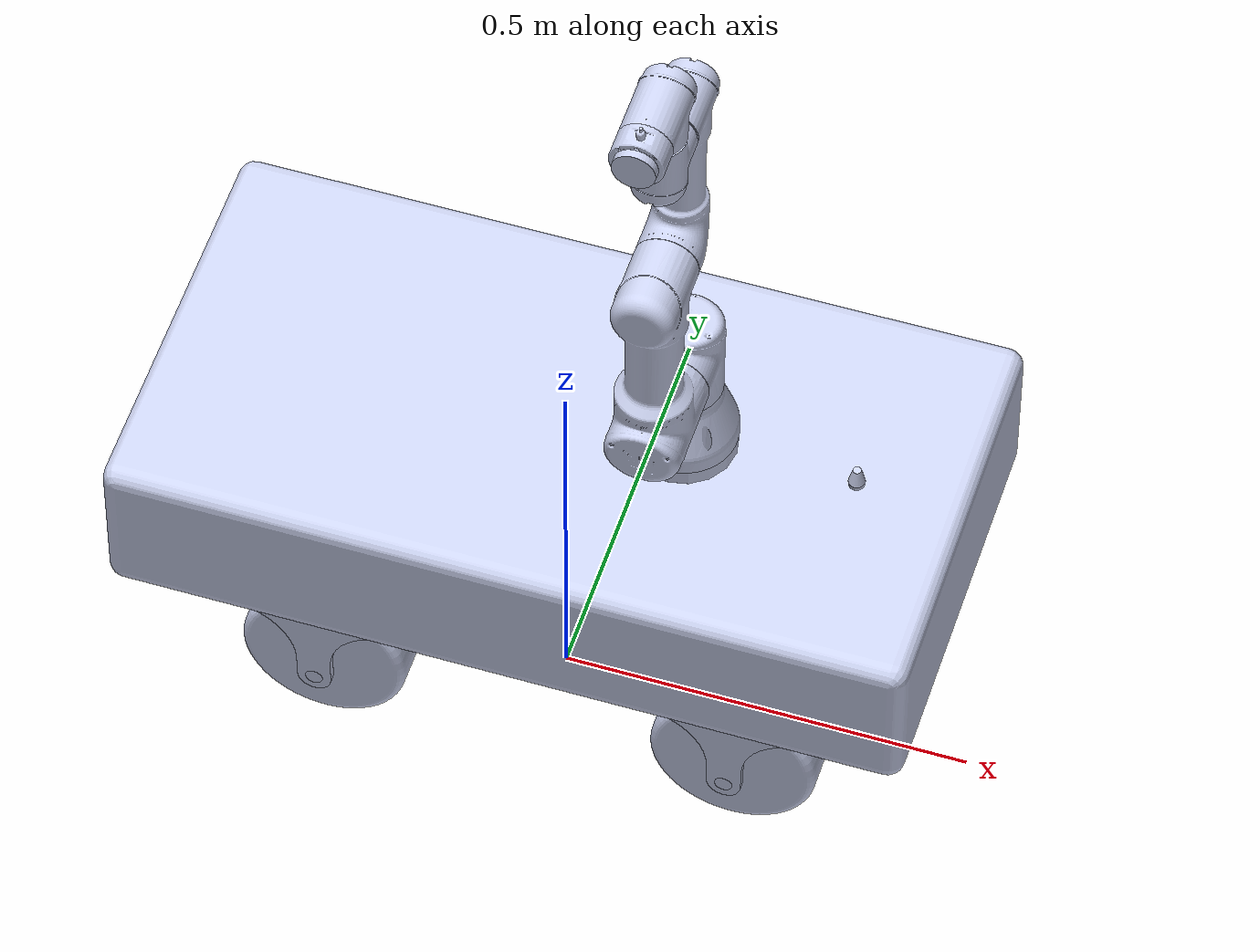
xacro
<?xml version="1.0" ?>
<robot
  name="mobile_manipulator" xmlns:xacro="http://ros.org/wiki/xacro">
  # Add this before base link
  <link name="dummy_link"></link>
  <link
    name="base_link">
    <inertial>
      <origin
        xyz="0.000644165065527376 -3.35619100197445E-18 0.38743266690136"
        rpy="0 0 0" />
      <mass
        value="96.9136296338022" />
      <inertia
        ixx="2.38886837855272"
        ixy="-1.23188622578839E-16"
        ixz="-0.00214186650953037"
        iyy="7.80200314580561"
        iyz="-1.32310636050657E-17"
        izz="9.55027150851434" />
    </inertial>
    <visual>
      <origin
        xyz="0 0 0"
        rpy="0 0 0" />
      <geometry>
        <mesh
          filename="package://mobile_manipulator/meshes/base_link.STL" />
      </geometry>
      <material
        name="">
        <color
          rgba="0.792156862745098 0.819607843137255 0.933333333333333 1" />
      </material>
    </visual>
    <collision>
      <origin
        xyz="0 0 0"
        rpy="0 0 0" />
      <geometry>
        <mesh
          filename="package://mobile_manipulator/meshes/base_link.STL" />
      </geometry>
    </collision>
  </link>
  # Add this after base link
  <joint name="dummy_joint" type="fixed">
      <origin rpy="0 0 0" xyz="0 0 0" />
      <parent link="dummy_link"/>
      <child link="base_link"/>
  </joint>
  <link
    name="front_left_steering">
    <inertial>
      <origin
        xyz="-5.55111512312578E-17 2.77555756156289E-17 -0.00100979154458806"
        rpy="0 0 0" />
      <mass
        value="12.0764682220137" />
      <inertia
        ixx="0.00246925151599424"
        ixy="1.12973189801329E-19"
        ixz="4.11518887968338E-19"
        iyy="0.00412813483107971"
        iyz="-4.31357938885303E-19"
        izz="0.00351559812829262" />
    </inertial>
    <visual>
      <origin
        xyz="0 0 0"
        rpy="0 0 0" />
      <geometry>
        <mesh
          filename="package://mobile_manipulator/meshes/front_left_steering.STL" />
      </geometry>
      <material
        name="">
        <color
          rgba="0.792156862745098 0.819607843137255 0.933333333333333 1" />
      </material>
    </visual>
    <collision>
      <origin
        xyz="0 0 0"
        rpy="0 0 0" />
      <geometry>
        <mesh
          filename="package://mobile_manipulator/meshes/front_left_steering.STL" />
      </geometry>
    </collision>
  </link>
  <joint
    name="front_left_steering_joint"
    type="revolute">
    <origin
      xyz="0.254 0.12 0.2365"
      rpy="0 0 3.1416" />
    <parent
      link="base_link" />
    <child
      link="front_left_steering" />
    <axis
      xyz="0 0 1" />
    <limit
      lower="-6.28"
      upper="6.28"
      effort="100"
      velocity="100" />
  </joint>
  <link
    name="front_left_wheel">
    <inertial>
      <origin
        xyz="-5.55111512312578E-17 -2.77555756156289E-17 -0.068"
        rpy="0 0 0" />
      <mass
        value="24.558140982851" />
      <inertia
        ixx="0.00741941487915618"
        ixy="-1.21590829930798E-36"
        ixz="3.75517939949407E-21"
        iyy="0.00741941487915618"
        iyz="-1.61219743567717E-35"
        izz="0.012407928301343" />
    </inertial>
    <visual>
      <origin
        xyz="0 0 0"
        rpy="0 0 0" />
      <geometry>
        <mesh
          filename="package://mobile_manipulator/meshes/front_left_wheel.STL" />
      </geometry>
      <material
        name="">
        <color
          rgba="0.792156862745098 0.819607843137255 0.933333333333333 1" />
      </material>
    </visual>
    <collision>
      <origin
        xyz="0 0 0"
        rpy="0 0 0" />
      <geometry>
        <mesh
          filename="package://mobile_manipulator/meshes/front_left_wheel.STL" />
      </geometry>
    </collision>
  </link>
  <joint
    name="front_left_wheel_joint"
    type="continuous">
    <origin
      xyz="0 -0.068 -0.135"
      rpy="1.5708 0 0" />
    <parent
      link="front_left_steering" />
    <child
      link="front_left_wheel" />
    <axis
      xyz="0 0 1" />
  </joint>
  <link
    name="front_right_steering">
    <inertial>
      <origin
        xyz="0 0 -0.0010098"
        rpy="0 0 0" />
      <mass
        value="12.076" />
      <inertia
        ixx="0.0024693"
        ixy="3.1083E-19"
        ixz="2.4445E-19"
        iyy="0.0041281"
        iyz="-4.0001E-19"
        izz="0.0035156" />
    </inertial>
    <visual>
      <origin
        xyz="0 0 0"
        rpy="0 0 0" />
      <geometry>
        <mesh
          filename="package://mobile_manipulator/meshes/front_right_steering.STL" />
      </geometry>
      <material
        name="">
        <color
          rgba="0.79216 0.81961 0.93333 1" />
      </material>
    </visual>
    <collision>
      <origin
        xyz="0 0 0"
        rpy="0 0 0" />
      <geometry>
        <mesh
          filename="package://mobile_manipulator/meshes/front_right_steering.STL" />
      </geometry>
    </collision>
  </link>
  <joint
    name="front_right_steering_joint"
    type="revolute">
    <origin
      xyz="0.254 -0.12 0.2365"
      rpy="0 0 3.1416" />
    <parent
      link="base_link" />
    <child
      link="front_right_steering" />
    <axis
      xyz="0 0 1" />
    <limit
      lower="-6.28"
      upper="6.28"
      effort="0"
      velocity="0" />
  </joint>
  <link
    name="front_right_wheel">
    <inertial>
      <origin
        xyz="-5.55111512312578E-17 -2.77555756156289E-17 0.068"
        rpy="0 0 0" />
      <mass
        value="24.558140982851" />
      <inertia
        ixx="0.00741941487915618"
        ixy="-1.21590829930796E-36"
        ixz="-1.09998260108621E-19"
        iyy="0.00741941487915618"
        iyz="-1.61219743567717E-35"
        izz="0.012407928301343" />
    </inertial>
    <visual>
      <origin
        xyz="0 0 0"
        rpy="0 0 0" />
      <geometry>
        <mesh
          filename="package://mobile_manipulator/meshes/front_right_wheel.STL" />
      </geometry>
      <material
        name="">
        <color
          rgba="0.792156862745098 0.819607843137255 0.933333333333333 1" />
      </material>
    </visual>
    <collision>
      <origin
        xyz="0 0 0"
        rpy="0 0 0" />
      <geometry>
        <mesh
          filename="package://mobile_manipulator/meshes/front_right_wheel.STL" />
      </geometry>
    </collision>
  </link>
  <joint
    name="front_right_wheel_joint"
    type="continuous">
    <origin
      xyz="0 0.068 -0.135"
      rpy="1.5708 0 0" />
    <parent
      link="front_right_steering" />
    <child
      link="front_right_wheel" />
    <axis
      xyz="0 0 1" />
  </joint>
  <link
    name="back_left_steering">
    <inertial>
      <origin
        xyz="-0.254 0.12 0.239368028274236"
        rpy="0 0 0" />
      <mass
        value="13.0620935752366" />
      <inertia
        ixx="0.00275590353584088"
        ixy="7.90858358456072E-20"
        ixz="-3.20596364961941E-19"
        iyy="0.00441705252066951"
        iyz="4.79649320911441E-19"
        izz="0.00364730238636921" />
    </inertial>
    <visual>
      <origin
        xyz="0 0 0"
        rpy="0 0 0" />
      <geometry>
        <mesh
          filename="package://mobile_manipulator/meshes/back_left_steering.STL" />
      </geometry>
      <material
        name="">
        <color
          rgba="0.792156862745098 0.819607843137255 0.933333333333333 1" />
      </material>
    </visual>
    <collision>
      <origin
        xyz="0 0 0"
        rpy="0 0 0" />
      <geometry>
        <mesh
          filename="package://mobile_manipulator/meshes/back_left_steering.STL" />
      </geometry>
    </collision>
  </link>
  <joint
    name="back_left_steering_joint"
    type="fixed">
    <origin
      xyz="0 0 0"
      rpy="0 0 0" />
    <parent
      link="base_link" />
    <child
      link="back_left_steering" />
    <axis
      xyz="0 0 0" />
  </joint>
  <link
    name="back_left_wheel">
    <inertial>
      <origin
        xyz="5.5511E-17 -2.7756E-17 -0.068"
        rpy="0 0 0" />
      <mass
        value="24.558" />
      <inertia
        ixx="0.0074194"
        ixy="-1.2159E-36"
        ixz="-3.7552E-21"
        iyy="0.0074194"
        iyz="-1.6122E-35"
        izz="0.012408" />
    </inertial>
    <visual>
      <origin
        xyz="0 0 0"
        rpy="0 0 0" />
      <geometry>
        <mesh
          filename="package://mobile_manipulator/meshes/back_left_wheel.STL" />
      </geometry>
      <material
        name="">
        <color
          rgba="0.79216 0.81961 0.93333 1" />
      </material>
    </visual>
    <collision>
      <origin
        xyz="0 0 0"
        rpy="0 0 0" />
      <geometry>
        <mesh
          filename="package://mobile_manipulator/meshes/back_left_wheel.STL" />
      </geometry>
    </collision>
  </link>
  <joint
    name="back_left_wheel_joint"
    type="continuous">
    <origin
      xyz="-0.254 0.188 0.1015"
      rpy="1.5708 0 3.1416" />
    <parent
      link="back_left_steering" />
    <child
      link="back_left_wheel" />
    <axis
      xyz="0 0 1" />
  </joint>
  <link
    name="back_right_steering">
    <inertial>
      <origin
        xyz="-0.254 -0.12 0.23937"
        rpy="0 0 0" />
      <mass
        value="13.062" />
      <inertia
        ixx="0.0027559"
        ixy="2.6328E-19"
        ixz="-2.6158E-19"
        iyy="0.0044171"
        iyz="4.5407E-19"
        izz="0.0036473" />
    </inertial>
    <visual>
      <origin
        xyz="0 0 0"
        rpy="0 0 0" />
      <geometry>
        <mesh
          filename="package://mobile_manipulator/meshes/back_right_steering.STL" />
      </geometry>
      <material
        name="">
        <color
          rgba="0.79216 0.81961 0.93333 1" />
      </material>
    </visual>
    <collision>
      <origin
        xyz="0 0 0"
        rpy="0 0 0" />
      <geometry>
        <mesh
          filename="package://mobile_manipulator/meshes/back_right_steering.STL" />
      </geometry>
    </collision>
  </link>
  <joint
    name="back_right_steering_joint"
    type="fixed">
    <origin
      xyz="0 0 0"
      rpy="0 0 0" />
    <parent
      link="base_link" />
    <child
      link="back_right_steering" />
    <axis
      xyz="0 0 0" />
  </joint>
  <link
    name="back_right_wheel">
    <inertial>
      <origin
        xyz="5.55111512312578E-17 -2.77555756156289E-17 0.068"
        rpy="0 0 0" />
      <mass
        value="24.558140982851" />
      <inertia
        ixx="0.00741941487915618"
        ixy="-1.21590829930796E-36"
        ixz="-1.41567439917769E-19"
        iyy="0.00741941487915618"
        iyz="-1.61219743567717E-35"
        izz="0.012407928301343" />
    </inertial>
    <visual>
      <origin
        xyz="0 0 0"
        rpy="0 0 0" />
      <geometry>
        <mesh
          filename="package://mobile_manipulator/meshes/back_right_wheel.STL" />
      </geometry>
      <material
        name="">
        <color
          rgba="0.792156862745098 0.819607843137255 0.933333333333333 1" />
      </material>
    </visual>
    <collision>
      <origin
        xyz="0 0 0"
        rpy="0 0 0" />
      <geometry>
        <mesh
          filename="package://mobile_manipulator/meshes/back_right_wheel.STL" />
      </geometry>
    </collision>
  </link>
  <joint
    name="back_right_wheel_joint"
    type="continuous">
    <origin
      xyz="-0.254 -0.188 0.1015"
      rpy="1.5708 0 3.1416" />
    <parent
      link="back_right_steering" />
    <child
      link="back_right_wheel" />
    <axis
      xyz="0 0 1" />
  </joint>
  <link
    name="laser">
    <inertial>
      <origin
        xyz="5.55111512312578E-17 9.49145585482929E-19 0.00785714285714281"
        rpy="0 0 0" />
      <mass
        value="0.00366519142918809" />
      <inertia
        ixx="1.69702103162663E-07"
        ixy="8.8232598672323E-24"
        ixz="6.55442161565827E-24"
        iyy="1.69702103162663E-07"
        iyz="3.31776222837145E-24"
        izz="1.21736715326605E-07" />
    </inertial>
    <visual>
      <origin
        xyz="0 0 0"
        rpy="0 0 0" />
      <geometry>
        <mesh
          filename="package://mobile_manipulator/meshes/laser.STL" />
      </geometry>
      <material
        name="">
        <color
          rgba="0.792156862745098 0.819607843137255 0.933333333333333 1" />
      </material>
    </visual>
    <collision>
      <origin
        xyz="0 0 0"
        rpy="0 0 0" />
      <geometry>
        <mesh
          filename="package://mobile_manipulator/meshes/laser.STL" />
      </geometry>
    </collision>
  </link>
  <joint
    name="laser_joint"
    type="fixed">
    <origin
      xyz="0.35 0 0.4915"
      rpy="0 0 3.1416" />
    <parent
      link="base_link" />
    <child
      link="laser" />
    <axis
      xyz="0 0 0" />
  </joint>
  <link
    name="manipulator_base">
    <inertial>
      <origin
        xyz="0.14246 0.00080895 0.55272"
        rpy="0 0 0" />
      <mass
        value="40" />
      <inertia
        ixx="0.00076128"
        ixy="3.0811E-07"
        ixz="-3.5087E-07"
        iyy="0.00077456"
        iyz="3.469E-06"
        izz="0.0010029" />
    </inertial>
    <visual>
      <origin
        xyz="0 0 0"
        rpy="0 0 0" />
      <geometry>
        <mesh
          filename="package://mobile_manipulator/meshes/manipulator_base.STL" />
      </geometry>
      <material
        name="">
        <color
          rgba="0.79216 0.81961 0.93333 1" />
      </material>
    </visual>
    <collision>
      <origin
        xyz="0 0 0"
        rpy="0 0 0" />
      <geometry>
        <mesh
          filename="package://mobile_manipulator/meshes/manipulator_base.STL" />
      </geometry>
    </collision>
  </link>
  <joint
    name="manipulator_base_joint"
    type="fixed">
    <origin
      xyz="0 0 0"
      rpy="0 0 0" />
    <parent
      link="base_link" />
    <child
      link="manipulator_base" />
    <axis
      xyz="0 0 0" />
  </joint>
  <link
    name="link_1">
    <inertial>
      <origin
        xyz="6.58173419118557E-06 0.00733747366447093 0.0542895851803173"
        rpy="0 0 0" />
      <mass
        value="0.812" />
      <inertia
        ixx="0.00106904405251134"
        ixy="-1.02159712854061E-07"
        ixz="9.60164144640981E-08"
        iyy="0.000990265851946983"
        iyz="-0.000131073827945145"
        izz="0.000906590285760524" />
    </inertial>
    <visual>
      <origin
        xyz="0 0 0"
        rpy="0 0 0" />
      <geometry>
        <mesh
          filename="package://mobile_manipulator/meshes/link_1.STL" />
      </geometry>
      <material
        name="">
        <color
          rgba="0.792156862745098 0.819607843137255 0.933333333333333 1" />
      </material>
    </visual>
    <collision>
      <origin
        xyz="0 0 0"
        rpy="0 0 0" />
      <geometry>
        <mesh
          filename="package://mobile_manipulator/meshes/link_1.STL" />
      </geometry>
    </collision>
  </link>
  <joint
    name="link_1_joint"
    type="revolute">
    <origin
      xyz="0.1425 0 0.59255"
      rpy="0 0 3.1416" />
    <parent
      link="manipulator_base" />
    <child
      link="link_1" />
    <axis
      xyz="0 0 -1" />
    <limit
      lower="-20.00"
      upper="20.00"
      effort="100"
      velocity="100" />
  </joint>
  <link
    name="link_2">
    <inertial>
      <origin
        xyz="-1.67408324636131E-06 -0.10564737774179 0.0625965013739546"
        rpy="0 0 0" />
      <mass
        value="0.028" />
      <inertia
        ixx="0.0026497946697873"
        ixy="-1.02109120182075E-07"
        ixz="-9.41450174738138E-08"
        iyy="0.00167012581720785"
        iyz="8.11148821187473E-05"
        izz="0.00251747271096735" />
    </inertial>
    <visual>
      <origin
        xyz="0 0 0"
        rpy="0 0 0" />
      <geometry>
        <mesh
          filename="package://mobile_manipulator/meshes/link_2.STL" />
      </geometry>
      <material
        name="">
        <color
          rgba="0.792156862745098 0.819607843137255 0.933333333333333 1" />
      </material>
    </visual>
    <collision>
      <origin
        xyz="0 0 0"
        rpy="0 0 0" />
      <geometry>
        <mesh
          filename="package://mobile_manipulator/meshes/link_2.STL" />
      </geometry>
    </collision>
  </link>
  <joint
    name="link_2_joint"
    type="revolute">
    <origin
      xyz="0 0.054 0.065867"
      rpy="-1.5708 0 0" />
    <parent
      link="link_1" />
    <child
      link="link_2" />
    <axis
      xyz="0 0 -1" />
    <limit
      lower="-20.00"
      upper="20.00"
      effort="100"
      velocity="100" />
  </joint>
  <link
    name="link_3">
    <inertial>
      <origin
        xyz="0.11118050454157 1.42533757430119E-06 -0.0458120680197103"
        rpy="0 0 0" />
      <mass
        value="0.012" />
      <inertia
        ixx="0.000542711704316877"
        ixy="1.25825132181669E-08"
        ixz="4.61333716863673E-05"
        iyy="0.00107276322079369"
        iyz="2.00180185555328E-09"
        izz="0.00101487896246635" />
    </inertial>
    <visual>
      <origin
        xyz="0 0 0"
        rpy="0 0 0" />
      <geometry>
        <mesh
          filename="package://mobile_manipulator/meshes/link_3.STL" />
      </geometry>
      <material
        name="">
        <color
          rgba="0.792156862745098 0.819607843137255 0.933333333333333 1" />
      </material>
    </visual>
    <collision>
      <origin
        xyz="0 0 0"
        rpy="0 0 0" />
      <geometry>
        <mesh
          filename="package://mobile_manipulator/meshes/link_3.STL" />
      </geometry>
    </collision>
  </link>
  <joint
    name="link_3_joint"
    type="revolute">
    <origin
      xyz="0 -0.24361 0.0236"
      rpy="0 0 -1.5708" />
    <parent
      link="link_2" />
    <child
      link="link_3" />
    <axis
      xyz="0 0 1" />
    <limit
      lower="-20.00"
      upper="20.00"
      effort="100"
      velocity="100" />
  </joint>
  <link
    name="link_4">
    <inertial>
      <origin
        xyz="-0.000517520676647787 -1.55610876323431E-07 0.038579075531619"
        rpy="0 0 0" />
      <mass
        value="0.00306" />
      <inertia
        ixx="0.000199090773054517"
        ixy="-5.53800052139047E-10"
        ixz="-1.83392823207415E-05"
        iyy="0.000226213544707352"
        iyz="-1.13240497380847E-10"
        izz="0.000194591880506209" />
    </inertial>
    <visual>
      <origin
        xyz="0 0 0"
        rpy="0 0 0" />
      <geometry>
        <mesh
          filename="package://mobile_manipulator/meshes/link_4.STL" />
      </geometry>
      <material
        name="">
        <color
          rgba="0.792156862745098 0.819607843137255 0.933333333333333 1" />
      </material>
    </visual>
    <collision>
      <origin
        xyz="0 0 0"
        rpy="0 0 0" />
      <geometry>
        <mesh
          filename="package://mobile_manipulator/meshes/link_4.STL" />
      </geometry>
    </collision>
  </link>
  <joint
    name="link_4_joint"
    type="revolute">
    <origin
      xyz="0.213 0 -0.008361"
      rpy="0 0 0" />
    <parent
      link="link_3" />
    <child
      link="link_4" />
    <axis
      xyz="0 0 -1" />
    <limit
      lower="-20.00"
      upper="20.00"
      effort="100"
      velocity="100" />
  </joint>
  <link
    name="link_5">
    <inertial>
      <origin
        xyz="-1.54480118669253E-07 8.92294302720226E-05 0.0386330063774174"
        rpy="0 0 0" />
      <mass
        value="0.00306" />
      <inertia
        ixx="0.000227612518030099"
        ixy="5.57169423133457E-10"
        ixz="-1.13170160674141E-10"
        iyy="0.000201866565828176"
        iyz="1.83392711961254E-05"
        izz="0.000195999074242431" />
    </inertial>
    <visual>
      <origin
        xyz="0 0 0"
        rpy="0 0 0" />
      <geometry>
        <mesh
          filename="package://mobile_manipulator/meshes/link_5.STL" />
      </geometry>
      <material
        name="">
        <color
          rgba="0.792156862745098 0.819607843137255 0.933333333333333 1" />
      </material>
    </visual>
    <collision>
      <origin
        xyz="0 0 0"
        rpy="0 0 0" />
      <geometry>
        <mesh
          filename="package://mobile_manipulator/meshes/link_5.STL" />
      </geometry>
    </collision>
  </link>
  <joint
    name="link_5_joint"
    type="revolute">
    <origin
      xyz="0.0426 0 0.0445"
      rpy="-1.5708 0 -1.5708" />
    <parent
      link="link_4" />
    <child
      link="link_5" />
    <axis
      xyz="0 0 -1" />
    <limit
      lower="-20.00"
      upper="20.00"
      effort="100"
      velocity="100" />
  </joint>
  <link
    name="link_6">
    <inertial>
      <origin
        xyz="-5.77714265315166E-11 -0.000106055688464446 0.0189845667009977"
        rpy="0 0 0" />
      <mass
        value="0.00137" />
      <inertia
        ixx="4.10643963272602E-05"
        ixy="3.77185656342141E-13"
        ixz="-6.45138236058631E-13"
        iyy="4.127980332862E-05"
        iyz="1.03226516511968E-07"
        izz="5.62853958723768E-05" />
    </inertial>
    <visual>
      <origin
        xyz="0 0 0"
        rpy="0 0 0" />
      <geometry>
        <mesh
          filename="package://mobile_manipulator/meshes/link_6.STL" />
      </geometry>
      <material
        name="">
        <color
          rgba="0.792156862745098 0.819607843137255 0.933333333333333 1" />
      </material>
    </visual>
    <collision>
      <origin
        xyz="0 0 0"
        rpy="0 0 0" />
      <geometry>
        <mesh
          filename="package://mobile_manipulator/meshes/link_6.STL" />
      </geometry>
    </collision>
  </link>
  <joint
    name="link_6_joint"
    type="revolute">
    <origin
      xyz="0 -0.0426 0.0445"
      rpy="1.5708 0 0" />
    <parent
      link="link_5" />
    <child
      link="link_6" />
    <axis
      xyz="0 0 -1" />
    <limit
      lower="-20.00"
      upper="20.00"
      effort="100"
      velocity="100" />
  </joint>
  <link
    name="camera">
    <inertial>
      <origin
        xyz="-1.41553435639707E-15 1.11022302462516E-15 0.00247670059704752"
        rpy="0 0 0" />
      <mass
        value="6.28318530717959E-05" />
      <inertia
        ixx="1.93731546971371E-10"
        ixy="5.4451383681285E-57"
        ixz="-6.07102760021521E-43"
        iyy="1.93731546971371E-10"
        iyz="-4.30823235704669E-27"
        izz="1.25663706143592E-10" />
    </inertial>
    <visual>
      <origin
        xyz="0 0 0"
        rpy="0 0 0" />
      <geometry>
        <mesh
          filename="package://mobile_manipulator/meshes/camera.STL" />
      </geometry>
      <material
        name="">
        <color
          rgba="0.792156862745098 0.819607843137255 0.933333333333333 1" />
      </material>
    </visual>
    <collision>
      <origin
        xyz="0 0 0"
        rpy="0 0 0" />
      <geometry>
        <mesh
          filename="package://mobile_manipulator/meshes/camera.STL" />
      </geometry>
    </collision>
  </link>
  <joint
    name="camera_joint"
    type="fixed">
    <origin
      xyz="0 0.038053 0.023"
      rpy="1.5708 0 3.1416" />
    <parent
      link="link_6" />
    <child
      link="camera" />
    <axis
      xyz="0 0 0" />
  </joint>
  <link
    name="vaccum_gripper">
    <inertial>
      <origin
        xyz="0 1.11022302462516E-16 0.00499999999999995"
        rpy="0 0 0" />
      <mass
        value="0.000196349540849362" />
      <inertia
        ixx="3.23158619314575E-06"
        ixy="-1.28020580982076E-36"
        ixz="-3.52930394689315E-23"
        iyy="3.23158619314575E-06"
        iyz="2.86090848225374E-21"
        izz="6.13592315154257E-06" />
    </inertial>
    <visual>
      <origin
        xyz="0 0 0"
        rpy="0 0 0" />
      <geometry>
        <mesh
          filename="package://mobile_manipulator/meshes/vaccum_gripper.STL" />
      </geometry>
      <material
        name="">
        <color
          rgba="0.792156862745098 0.819607843137255 0.933333333333333 1" />
      </material>
    </visual>
    <collision>
      <origin
        xyz="0 0 0"
        rpy="0 0 0" />
      <geometry>
        <mesh
          filename="package://mobile_manipulator/meshes/vaccum_gripper.STL" />
      </geometry>
    </collision>
  </link>
  <joint
    name="vaccum_gripper_joint"
    type="fixed">
    <origin
      xyz="0 0 0.039"
      rpy="0 0 0" />
    <parent
      link="link_6" />
    <child
      link="vaccum_gripper" />
    <axis
      xyz="0 0 0" />
  </joint>
  <ros2_control name="GazeboSystem" type="system">
  <hardware>
      <plugin>gazebo_ros2_control/GazeboSystem</plugin>
  </hardware>
  # Velocity Controllers

  <joint name="back_left_wheel_joint">
      <command_interface name="velocity">
          <param name="min">-1000.0</param>
          <param name="max">1000.0</param>
      </command_interface>
      <state_interface name="position"/>
      <state_interface name="velocity"/>
  </joint>

  <joint name="back_right_wheel_joint">
      <command_interface name="velocity">
          <param name="min">-1000.0</param>
          <param name="max">1000.0</param>
      </command_interface>
      <state_interface name="position"/>
      <state_interface name="velocity"/>
  </joint>

  <joint name="front_left_wheel_joint">
      <command_interface name="velocity">
          <param name="min">-1000.0</param>
          <param name="max">1000.0</param>
      </command_interface>
      <state_interface name="position"/>
      <state_interface name="velocity"/>
  </joint>

  <joint name="front_right_wheel_joint">
      <command_interface name="velocity">
          <param name="min">-1000.0</param>
          <param name="max">1000.0</param>
      </command_interface>
      <state_interface name="position"/>
      <state_interface name="velocity"/>
  </joint>

  <joint name="link_1_joint">
      <command_interface name="velocity">
          <param name="min">-1000.0</param>
          <param name="max">1000.0</param>
      </command_interface>
      <state_interface name="position"/>
      <state_interface name="velocity"/>
  </joint>

  <joint name="link_2_joint">
      <command_interface name="velocity">
          <param name="min">-1000.0</param>
          <param name="max">1000.0</param>
      </command_interface>
      <state_interface name="position"/>
      <state_interface name="velocity"/>
  </joint>

  <joint name="link_3_joint">
      <command_interface name="velocity">
          <param name="min">-1000.0</param>
          <param name="max">1000.0</param>
      </command_interface>
      <state_interface name="position"/>
      <state_interface name="velocity"/>
  </joint>

  <joint name="link_4_joint">
      <command_interface name="velocity">
          <param name="min">-1000.0</param>
          <param name="max">1000.0</param>
      </command_interface>
      <state_interface name="position"/>
      <state_interface name="velocity"/>
  </joint>

  <joint name="link_5_joint">
      <command_interface name="velocity">
          <param name="min">-1000.0</param>
          <param name="max">1000.0</param>
      </command_interface>
      <state_interface name="position"/>
      <state_interface name="velocity"/>
  </joint>

  <joint name="link_6_joint">
      <command_interface name="velocity">
          <param name="min">-1000.0</param>
          <param name="max">1000.0</param>
      </command_interface>
      <state_interface name="position"/>
      <state_interface name="velocity"/>
  </joint>

  # Position Controller
  <joint name="front_left_steering_joint">
      <command_interface name="position">
          <param name="min">-20.00</param>
          <param name="max">20.00</param>
      </command_interface>
      <state_interface name="position"/>
      <state_interface name="velocity"/>
  </joint>

  <joint name="front_right_steering_joint">
      <command_interface name="position">
          <param name="min">-20.00</param>
          <param name="max">20.00</param>
      </command_interface>
      <state_interface name="position"/>
      <state_interface name="velocity"/>
  </joint>

  <joint name="link_1_joint">
      <command_interface name="position">
          <param name="min">-20.00</param>
          <param name="max">20.00</param>
      </command_interface>
      <state_interface name="position"/>
      <state_interface name="velocity"/>
  </joint>

  <joint name="link_2_joint">
      <command_interface name="position">
          <param name="min">-20.00</param>
          <param name="max">20.00</param>
      </command_interface>
      <state_interface name="position"/>
      <state_interface name="velocity"/>
  </joint>

  <joint name="link_3_joint">
      <command_interface name="position">
          <param name="min">-20.00</param>
          <param name="max">20.00</param>
      </command_interface>
      <state_interface name="position"/>
      <state_interface name="velocity"/>
  </joint>

  <joint name="link_4_joint">
      <command_interface name="position">
          <param name="min">-20.00</param>
          <param name="max">20.00</param>
      </command_interface>
      <state_interface name="position"/>
      <state_interface name="velocity"/>
  </joint>

  <joint name="link_5_joint">
      <command_interface name="position">
          <param name="min">-20.00</param>
          <param name="max">20.00</param>
      </command_interface>
      <state_interface name="position"/>
      <state_interface name="velocity"/>
  </joint>

  <joint name="link_6_joint">
      <command_interface name="position">
          <param name="min">-20.00</param>
          <param name="max">20.00</param>
      </command_interface>
      <state_interface name="position"/>
      <state_interface name="velocity"/>
  </joint>

  </ros2_control>

  <gazebo>
      <plugin filename="libgazebo_ros2_control.so" name="gazebo_ros2_control">
          <parameters>$(find mobile_manipulator)/config/control.yaml</parameters>
      </plugin>
  </gazebo>

  <gazebo>
    <plugin name='vacuum_gripper' filename='libgazebo_ros_vacuum_gripper.so'>

      <!-- This part can be commented out if not required -->

      <!-- Link associated with gripper -->
      <link_name>vaccum_gripper</link_name>

      <!-- Max distance to attract entities -->
      <max_distance>0.2</max_distance>

      <!-- List of entities to be not attracted by the gripper -->
      <fixed>ground_plane</fixed>
      <fixed>wall</fixed>

    </plugin>
  </gazebo>
</robot>
